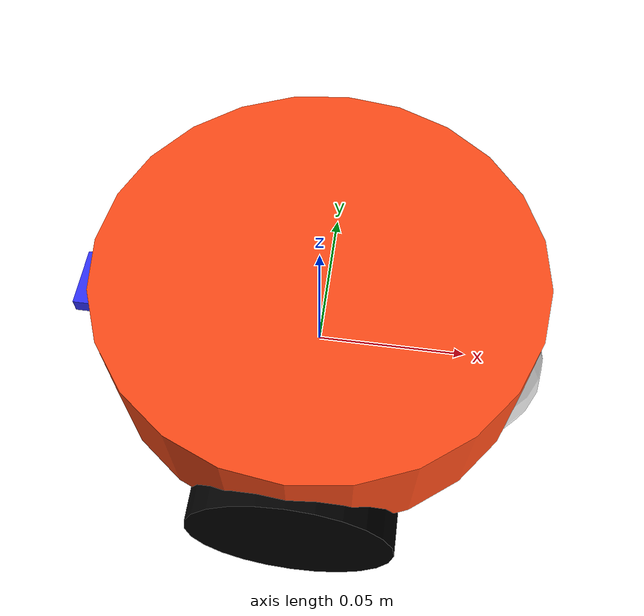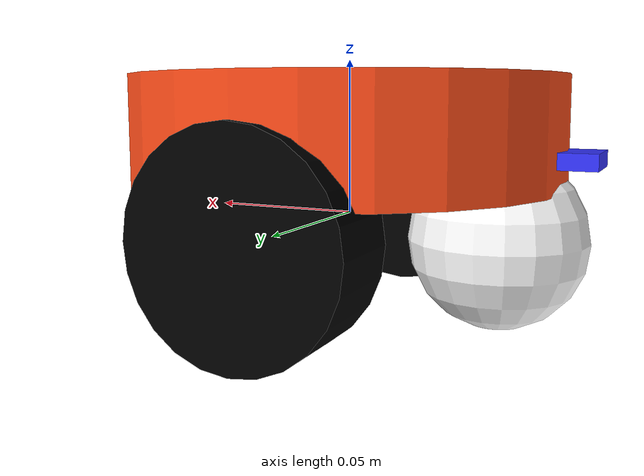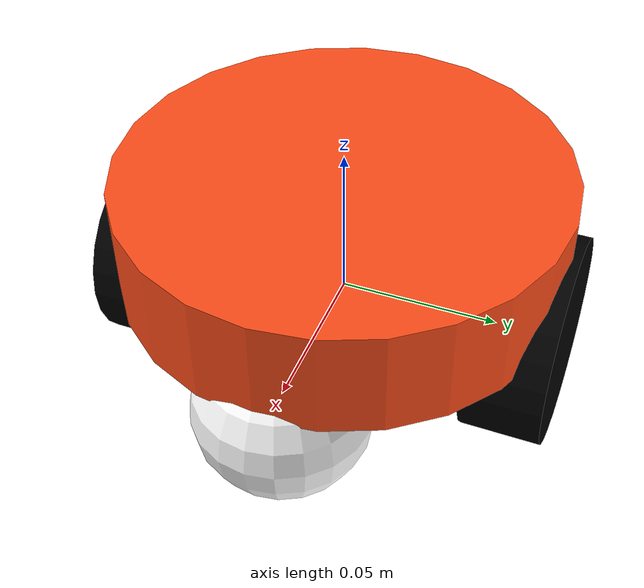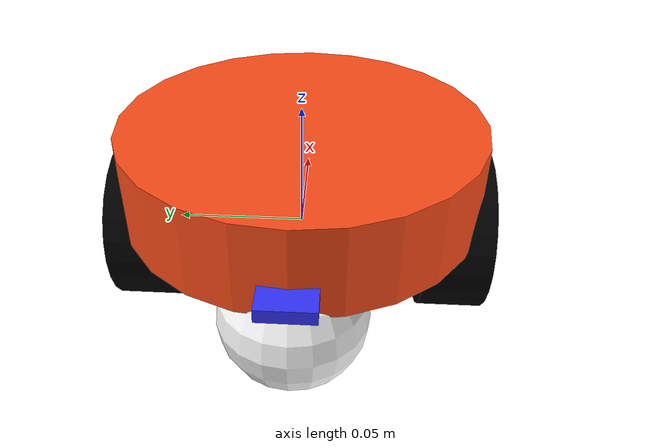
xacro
<?xml version="1.0"?>
<robot xmlns:xacro="http://www.ros.org/wiki/xacro" >

    <xacro:include filename="inertial_macros.xacro"/>
    <material name="white">
        <color rgba="1 1 1 1" />
    </material>

    <material name="orange">
        <color rgba="1 0.3 0.1 1" />
    </material>

    <material name="blue">
        <color rgba="0.2 0.2 1 1" />
    </material>

    <material name="black">
        <color rgba="0 0 0 1" />
    </material>

    <!-- BASE LINK-->

    <link name="base_link">

    </link>

        <!-- CHASSIS LINK-->

    <joint name="chassis_joint" type="fixed">
        <parent link="base_link"/>
        <child link="chassis"/>
        <origin xyz="0 0 0.01"/>
    </joint>

    <link name="chassis">
        <visual>
            <origin xyz="0 0 0.0175"/>
            <geometry>
                <cylinder length="0.035" radius="0.07"/>
            </geometry>
            <material name="orange"/>
        </visual>
        <collision>
            <origin xyz="0 0 0.0175"/>
            <geometry>
                <cylinder length="0.035" radius="0.07"/>
            </geometry>
        </collision>
        <xacro:inertial_cylinder mass="0.5" length="0.035" radius="0.07">
            <origin xyz="0 0 0.0175" rpy="0 0 0"/>
        </xacro:inertial_cylinder>
    </link>

    <gazebo reference="chassis">
        <material>Gazebo/Orange</material>
    </gazebo>

    <!-- LEFT WHEEL LINK-->

    <joint name= "left_wheel_joint" type="continuous">
        <parent link="base_link"/>
        <child link="left_wheel"/>
        <origin xyz="0 0.06 0" rpy="-${pi/2} 0 0"/>
        <axis xyz="0 0 1"/>
    </joint>

    <link name="left_wheel">
        <visual>
            <geometry>
                <cylinder radius="0.0325" length="0.025"/>
            </geometry>
            <material name="black"/>
        </visual>
        <collision>
            <geometry>
                <sphere radius="0.0325"/>
            </geometry>
        </collision>
        <xacro:inertial_cylinder mass="0.1" length="0.025" radius="0.0325">
            <origin xyz="0 0 0" rpy="0 0 0"/>
        </xacro:inertial_cylinder>
    </link>

    <gazebo reference="left_wheel">
        <material>Gazebo/Black</material>
    </gazebo>

    <!-- RIGHT WHEEL LINK-->

    <joint name= "right_wheel_joint" type="continuous">
        <parent link="base_link"/>
        <child link="right_wheel"/>
        <origin xyz="0 -0.06 0" rpy="${pi/2} 0 0"/>
        <axis xyz="0 0 -1"/>
    </joint>

    <link name="right_wheel">
        <visual>
            <geometry>
                <cylinder radius="0.0325" length="0.025"/>
            </geometry>
            <material name="black"/>
        </visual>
        <collision>
            <geometry>
                <sphere radius="0.0325"/>
            </geometry>
        </collision>
        <xacro:inertial_cylinder mass="0.1" length="0.025" radius="0.0325">
            <origin xyz="0 0 0" rpy="0 0 0"/>
        </xacro:inertial_cylinder>
    </link>

    <gazebo reference="right_wheel">
        <material>Gazebo/Black</material>
    </gazebo>

    <!-- CASTER FRONT WHEEL-->

    <joint name="caster_wheel_front_joint" type="fixed">
        <parent link="chassis"/>
        <child link="caster_wheel_front"/>
        <origin xyz="0.05 0 -0.015"/>
    </joint>

    <link name="caster_wheel_front">
        <visual>
            <geometry>
                <sphere radius="0.0275"/>
            </geometry>
            <material name="white"/>
        </visual>
        <collision>
            <geometry>
                <sphere radius="0.0275"/>
            </geometry>
        </collision>
        <xacro:inertial_sphere mass="0.1" radius="0.0275">
            <origin xyz="0 0 0" rpy="0 0 0"/>
        </xacro:inertial_sphere>
    </link>

    <gazebo reference="caster_wheel_front">
        <material>Gazebo/White</material>
        <mu1 value="0.001"/>
        <mu2 value="0.001"/>
    </gazebo>

    <!-- CASTER BACK WHEEL-->

    <joint name="caster_wheel_back_joint" type="fixed">
        <parent link="chassis"/>
        <child link="caster_wheel_back"/>
        <origin xyz="-0.05 0 -0.015"/>
    </joint>

    <link name="caster_wheel_back">
        <visual>
            <geometry>
                <sphere radius="0.0275"/>
            </geometry>
            <material name="white"/>
        </visual>
        <collision>
            <geometry>
                <sphere radius="0.0275"/>
            </geometry>
        </collision>
        <xacro:inertial_sphere mass="0.1" radius="0.0275">
            <origin xyz="0 0 0" rpy="0 0 0"/>
        </xacro:inertial_sphere>
    </link>

    <gazebo reference="caster_wheel_back">
        <material>Gazebo/White</material>
        <mu1 value="0.001"/>
        <mu2 value="0.001"/>
    </gazebo>

    <!-- IMU SENSOR -->

    <joint name= "imu_sensor_joint" type="fixed">
        <parent link="base_link"/>
        <child link="imu_sensor"/>
        <origin xyz="-0.07 0 0.02"/>
    </joint>

    <link name="imu_sensor">
        <visual>
            <geometry>
                <box size="0.02 0.02 0.005"/>
            </geometry>
            <material name="blue"/>
        </visual>
        <sensor type="imu" name="imu_sensor">
            <origin xyz="0 0 0"/>
            <update_rate>100</update_rate>
            <imu>
                <angular_velocity>true</angular_velocity>
                <linear_acceleration>true</linear_acceleration>
                <orientation>true</orientation>
            </imu>
        </sensor>
    </link>

    <gazebo reference="chassis">
        <material>Gazebo/Blue</material>
    </gazebo>

</robot>
